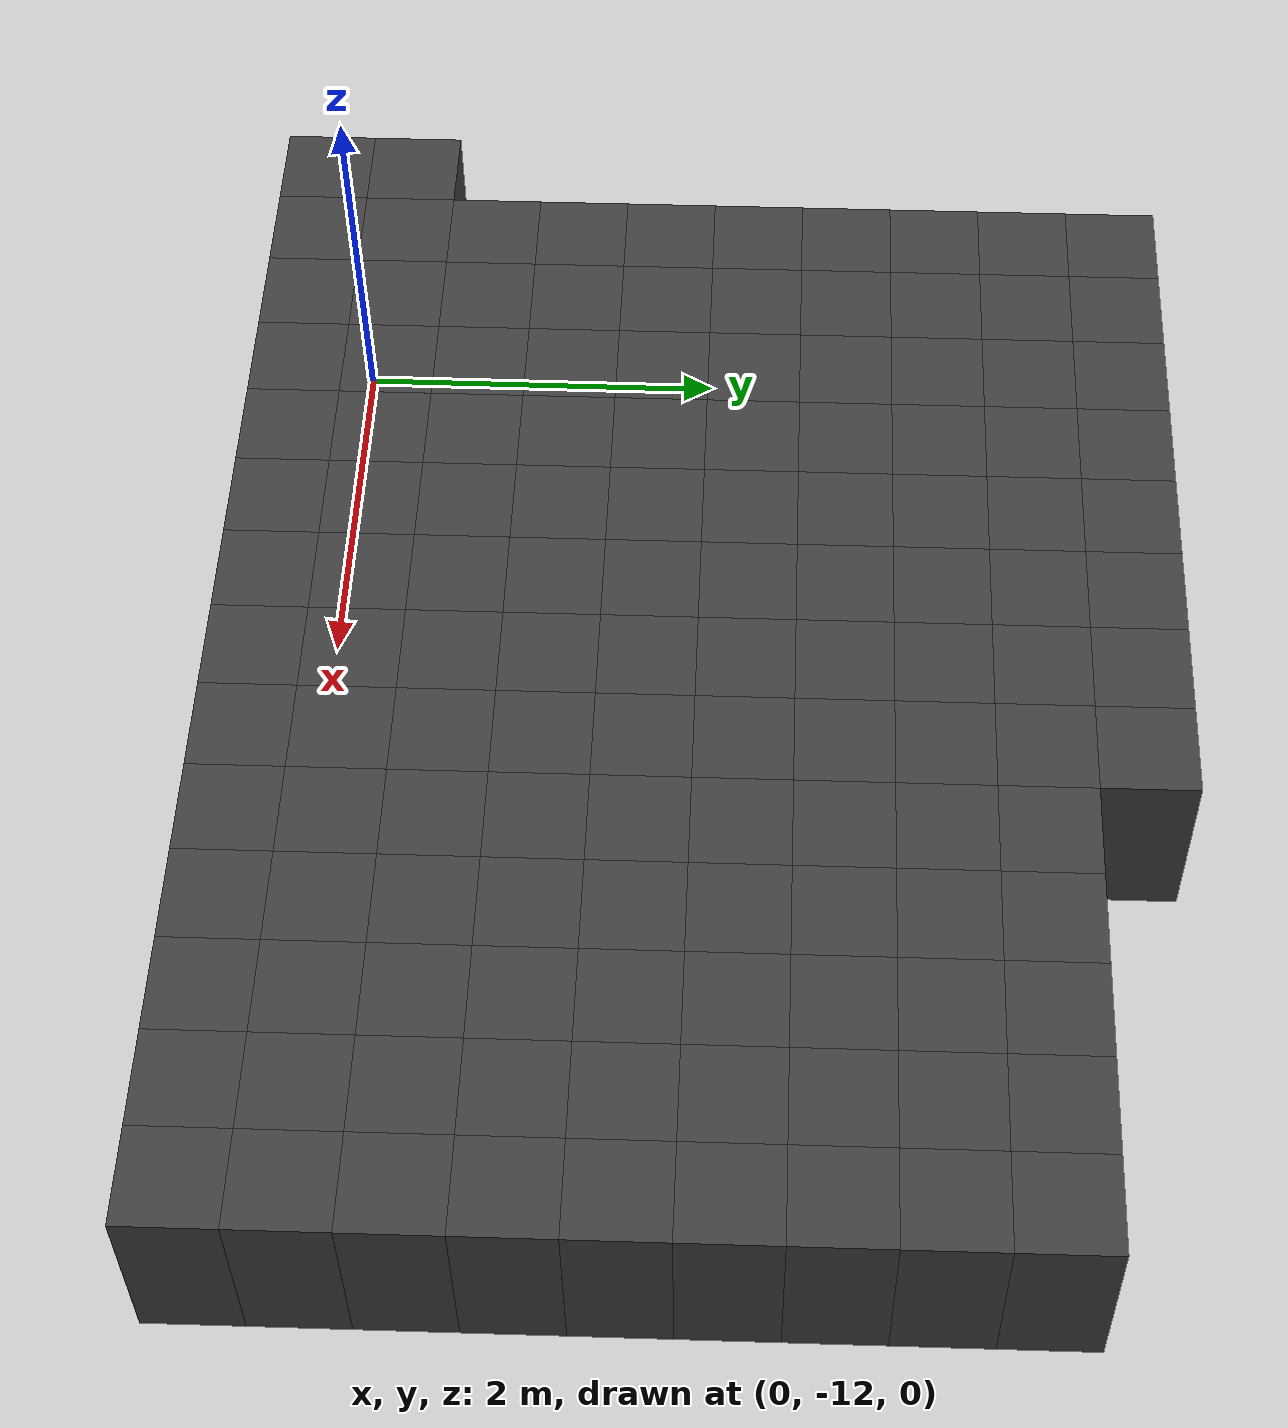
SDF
<sdf version="1.7">
 <world name="map_11672">
  <model name="ground_plane">
   <static>true</static>
   <link name="link">
    <collision name="collision">
     <geometry><plane><normal>0 0 1</normal><size>200 200</size></plane></geometry>
    </collision>
    <visual name="visual">
     <geometry><plane><normal>0 0 1</normal><size>200 200</size></plane></geometry>
     <material><ambient>0.8 0.8 0.8 1</ambient><diffuse>0.8 0.8 0.8 1</diffuse></material>
    </visual>
   </link>
  </model>
  <model name="maze_environment">
   <static>true</static>
   <link name="wall_1701">
    <pose>-0.250 -7.750 0.500 0 0 0</pose>
    <collision name="col"><geometry><box><size>0.5 0.5 1.0</size></box></geometry></collision>
    <visual name="vis">
     <geometry><box><size>0.5 0.5 1.0</size></box></geometry>
     <material><ambient>0.15 0.15 0.15 1</ambient><diffuse>0.25 0.25 0.25 1</diffuse></material>
    </visual>
   </link>
   <link name="wall_1702">
    <pose>0.250 -7.750 0.500 0 0 0</pose>
    <collision name="col"><geometry><box><size>0.5 0.5 1.0</size></box></geometry></collision>
    <visual name="vis">
     <geometry><box><size>0.5 0.5 1.0</size></box></geometry>
     <material><ambient>0.15 0.15 0.15 1</ambient><diffuse>0.25 0.25 0.25 1</diffuse></material>
    </visual>
   </link>
   <link name="wall_1703">
    <pose>0.750 -7.750 0.500 0 0 0</pose>
    <collision name="col"><geometry><box><size>0.5 0.5 1.0</size></box></geometry></collision>
    <visual name="vis">
     <geometry><box><size>0.5 0.5 1.0</size></box></geometry>
     <material><ambient>0.15 0.15 0.15 1</ambient><diffuse>0.25 0.25 0.25 1</diffuse></material>
    </visual>
   </link>
   <link name="wall_1704">
    <pose>1.250 -7.750 0.500 0 0 0</pose>
    <collision name="col"><geometry><box><size>0.5 0.5 1.0</size></box></geometry></collision>
    <visual name="vis">
     <geometry><box><size>0.5 0.5 1.0</size></box></geometry>
     <material><ambient>0.15 0.15 0.15 1</ambient><diffuse>0.25 0.25 0.25 1</diffuse></material>
    </visual>
   </link>
   <link name="wall_1705">
    <pose>1.750 -7.750 0.500 0 0 0</pose>
    <collision name="col"><geometry><box><size>0.5 0.5 1.0</size></box></geometry></collision>
    <visual name="vis">
     <geometry><box><size>0.5 0.5 1.0</size></box></geometry>
     <material><ambient>0.15 0.15 0.15 1</ambient><diffuse>0.25 0.25 0.25 1</diffuse></material>
    </visual>
   </link>
   <link name="wall_1706">
    <pose>2.250 -7.750 0.500 0 0 0</pose>
    <collision name="col"><geometry><box><size>0.5 0.5 1.0</size></box></geometry></collision>
    <visual name="vis">
     <geometry><box><size>0.5 0.5 1.0</size></box></geometry>
     <material><ambient>0.15 0.15 0.15 1</ambient><diffuse>0.25 0.25 0.25 1</diffuse></material>
    </visual>
   </link>
   <link name="wall_1707">
    <pose>2.750 -7.750 0.500 0 0 0</pose>
    <collision name="col"><geometry><box><size>0.5 0.5 1.0</size></box></geometry></collision>
    <visual name="vis">
     <geometry><box><size>0.5 0.5 1.0</size></box></geometry>
     <material><ambient>0.15 0.15 0.15 1</ambient><diffuse>0.25 0.25 0.25 1</diffuse></material>
    </visual>
   </link>
   <link name="wall_1708">
    <pose>3.250 -7.750 0.500 0 0 0</pose>
    <collision name="col"><geometry><box><size>0.5 0.5 1.0</size></box></geometry></collision>
    <visual name="vis">
     <geometry><box><size>0.5 0.5 1.0</size></box></geometry>
     <material><ambient>0.15 0.15 0.15 1</ambient><diffuse>0.25 0.25 0.25 1</diffuse></material>
    </visual>
   </link>
   <link name="wall_1750">
    <pose>-0.250 -8.250 0.500 0 0 0</pose>
    <collision name="col"><geometry><box><size>0.5 0.5 1.0</size></box></geometry></collision>
    <visual name="vis">
     <geometry><box><size>0.5 0.5 1.0</size></box></geometry>
     <material><ambient>0.15 0.15 0.15 1</ambient><diffuse>0.25 0.25 0.25 1</diffuse></material>
    </visual>
   </link>
   <link name="wall_1751">
    <pose>0.250 -8.250 0.500 0 0 0</pose>
    <collision name="col"><geometry><box><size>0.5 0.5 1.0</size></box></geometry></collision>
    <visual name="vis">
     <geometry><box><size>0.5 0.5 1.0</size></box></geometry>
     <material><ambient>0.15 0.15 0.15 1</ambient><diffuse>0.25 0.25 0.25 1</diffuse></material>
    </visual>
   </link>
   <link name="wall_1752">
    <pose>0.750 -8.250 0.500 0 0 0</pose>
    <collision name="col"><geometry><box><size>0.5 0.5 1.0</size></box></geometry></collision>
    <visual name="vis">
     <geometry><box><size>0.5 0.5 1.0</size></box></geometry>
     <material><ambient>0.15 0.15 0.15 1</ambient><diffuse>0.25 0.25 0.25 1</diffuse></material>
    </visual>
   </link>
   <link name="wall_1753">
    <pose>1.250 -8.250 0.500 0 0 0</pose>
    <collision name="col"><geometry><box><size>0.5 0.5 1.0</size></box></geometry></collision>
    <visual name="vis">
     <geometry><box><size>0.5 0.5 1.0</size></box></geometry>
     <material><ambient>0.15 0.15 0.15 1</ambient><diffuse>0.25 0.25 0.25 1</diffuse></material>
    </visual>
   </link>
   <link name="wall_1754">
    <pose>1.750 -8.250 0.500 0 0 0</pose>
    <collision name="col"><geometry><box><size>0.5 0.5 1.0</size></box></geometry></collision>
    <visual name="vis">
     <geometry><box><size>0.5 0.5 1.0</size></box></geometry>
     <material><ambient>0.15 0.15 0.15 1</ambient><diffuse>0.25 0.25 0.25 1</diffuse></material>
    </visual>
   </link>
   <link name="wall_1755">
    <pose>2.250 -8.250 0.500 0 0 0</pose>
    <collision name="col"><geometry><box><size>0.5 0.5 1.0</size></box></geometry></collision>
    <visual name="vis">
     <geometry><box><size>0.5 0.5 1.0</size></box></geometry>
     <material><ambient>0.15 0.15 0.15 1</ambient><diffuse>0.25 0.25 0.25 1</diffuse></material>
    </visual>
   </link>
   <link name="wall_1756">
    <pose>2.750 -8.250 0.500 0 0 0</pose>
    <collision name="col"><geometry><box><size>0.5 0.5 1.0</size></box></geometry></collision>
    <visual name="vis">
     <geometry><box><size>0.5 0.5 1.0</size></box></geometry>
     <material><ambient>0.15 0.15 0.15 1</ambient><diffuse>0.25 0.25 0.25 1</diffuse></material>
    </visual>
   </link>
   <link name="wall_1757">
    <pose>3.250 -8.250 0.500 0 0 0</pose>
    <collision name="col"><geometry><box><size>0.5 0.5 1.0</size></box></geometry></collision>
    <visual name="vis">
     <geometry><box><size>0.5 0.5 1.0</size></box></geometry>
     <material><ambient>0.15 0.15 0.15 1</ambient><diffuse>0.25 0.25 0.25 1</diffuse></material>
    </visual>
   </link>
   <link name="wall_1758">
    <pose>3.750 -8.250 0.500 0 0 0</pose>
    <collision name="col"><geometry><box><size>0.5 0.5 1.0</size></box></geometry></collision>
    <visual name="vis">
     <geometry><box><size>0.5 0.5 1.0</size></box></geometry>
     <material><ambient>0.15 0.15 0.15 1</ambient><diffuse>0.25 0.25 0.25 1</diffuse></material>
    </visual>
   </link>
   <link name="wall_1759">
    <pose>4.250 -8.250 0.500 0 0 0</pose>
    <collision name="col"><geometry><box><size>0.5 0.5 1.0</size></box></geometry></collision>
    <visual name="vis">
     <geometry><box><size>0.5 0.5 1.0</size></box></geometry>
     <material><ambient>0.15 0.15 0.15 1</ambient><diffuse>0.25 0.25 0.25 1</diffuse></material>
    </visual>
   </link>
   <link name="wall_1760">
    <pose>4.750 -8.250 0.500 0 0 0</pose>
    <collision name="col"><geometry><box><size>0.5 0.5 1.0</size></box></geometry></collision>
    <visual name="vis">
     <geometry><box><size>0.5 0.5 1.0</size></box></geometry>
     <material><ambient>0.15 0.15 0.15 1</ambient><diffuse>0.25 0.25 0.25 1</diffuse></material>
    </visual>
   </link>
   <link name="wall_1761">
    <pose>5.250 -8.250 0.500 0 0 0</pose>
    <collision name="col"><geometry><box><size>0.5 0.5 1.0</size></box></geometry></collision>
    <visual name="vis">
     <geometry><box><size>0.5 0.5 1.0</size></box></geometry>
     <material><ambient>0.15 0.15 0.15 1</ambient><diffuse>0.25 0.25 0.25 1</diffuse></material>
    </visual>
   </link>
   <link name="wall_1762">
    <pose>5.750 -8.250 0.500 0 0 0</pose>
    <collision name="col"><geometry><box><size>0.5 0.5 1.0</size></box></geometry></collision>
    <visual name="vis">
     <geometry><box><size>0.5 0.5 1.0</size></box></geometry>
     <material><ambient>0.15 0.15 0.15 1</ambient><diffuse>0.25 0.25 0.25 1</diffuse></material>
    </visual>
   </link>
   <link name="wall_1799">
    <pose>-0.250 -8.750 0.500 0 0 0</pose>
    <collision name="col"><geometry><box><size>0.5 0.5 1.0</size></box></geometry></collision>
    <visual name="vis">
     <geometry><box><size>0.5 0.5 1.0</size></box></geometry>
     <material><ambient>0.15 0.15 0.15 1</ambient><diffuse>0.25 0.25 0.25 1</diffuse></material>
    </visual>
   </link>
   <link name="wall_1800">
    <pose>0.250 -8.750 0.500 0 0 0</pose>
    <collision name="col"><geometry><box><size>0.5 0.5 1.0</size></box></geometry></collision>
    <visual name="vis">
     <geometry><box><size>0.5 0.5 1.0</size></box></geometry>
     <material><ambient>0.15 0.15 0.15 1</ambient><diffuse>0.25 0.25 0.25 1</diffuse></material>
    </visual>
   </link>
   <link name="wall_1801">
    <pose>0.750 -8.750 0.500 0 0 0</pose>
    <collision name="col"><geometry><box><size>0.5 0.5 1.0</size></box></geometry></collision>
    <visual name="vis">
     <geometry><box><size>0.5 0.5 1.0</size></box></geometry>
     <material><ambient>0.15 0.15 0.15 1</ambient><diffuse>0.25 0.25 0.25 1</diffuse></material>
    </visual>
   </link>
   <link name="wall_1802">
    <pose>1.250 -8.750 0.500 0 0 0</pose>
    <collision name="col"><geometry><box><size>0.5 0.5 1.0</size></box></geometry></collision>
    <visual name="vis">
     <geometry><box><size>0.5 0.5 1.0</size></box></geometry>
     <material><ambient>0.15 0.15 0.15 1</ambient><diffuse>0.25 0.25 0.25 1</diffuse></material>
    </visual>
   </link>
   <link name="wall_1803">
    <pose>1.750 -8.750 0.500 0 0 0</pose>
    <collision name="col"><geometry><box><size>0.5 0.5 1.0</size></box></geometry></collision>
    <visual name="vis">
     <geometry><box><size>0.5 0.5 1.0</size></box></geometry>
     <material><ambient>0.15 0.15 0.15 1</ambient><diffuse>0.25 0.25 0.25 1</diffuse></material>
    </visual>
   </link>
   <link name="wall_1804">
    <pose>2.250 -8.750 0.500 0 0 0</pose>
    <collision name="col"><geometry><box><size>0.5 0.5 1.0</size></box></geometry></collision>
    <visual name="vis">
     <geometry><box><size>0.5 0.5 1.0</size></box></geometry>
     <material><ambient>0.15 0.15 0.15 1</ambient><diffuse>0.25 0.25 0.25 1</diffuse></material>
    </visual>
   </link>
   <link name="wall_1805">
    <pose>2.750 -8.750 0.500 0 0 0</pose>
    <collision name="col"><geometry><box><size>0.5 0.5 1.0</size></box></geometry></collision>
    <visual name="vis">
     <geometry><box><size>0.5 0.5 1.0</size></box></geometry>
     <material><ambient>0.15 0.15 0.15 1</ambient><diffuse>0.25 0.25 0.25 1</diffuse></material>
    </visual>
   </link>
   <link name="wall_1806">
    <pose>3.250 -8.750 0.500 0 0 0</pose>
    <collision name="col"><geometry><box><size>0.5 0.5 1.0</size></box></geometry></collision>
    <visual name="vis">
     <geometry><box><size>0.5 0.5 1.0</size></box></geometry>
     <material><ambient>0.15 0.15 0.15 1</ambient><diffuse>0.25 0.25 0.25 1</diffuse></material>
    </visual>
   </link>
   <link name="wall_1807">
    <pose>3.750 -8.750 0.500 0 0 0</pose>
    <collision name="col"><geometry><box><size>0.5 0.5 1.0</size></box></geometry></collision>
    <visual name="vis">
     <geometry><box><size>0.5 0.5 1.0</size></box></geometry>
     <material><ambient>0.15 0.15 0.15 1</ambient><diffuse>0.25 0.25 0.25 1</diffuse></material>
    </visual>
   </link>
   <link name="wall_1808">
    <pose>4.250 -8.750 0.500 0 0 0</pose>
    <collision name="col"><geometry><box><size>0.5 0.5 1.0</size></box></geometry></collision>
    <visual name="vis">
     <geometry><box><size>0.5 0.5 1.0</size></box></geometry>
     <material><ambient>0.15 0.15 0.15 1</ambient><diffuse>0.25 0.25 0.25 1</diffuse></material>
    </visual>
   </link>
   <link name="wall_1809">
    <pose>4.750 -8.750 0.500 0 0 0</pose>
    <collision name="col"><geometry><box><size>0.5 0.5 1.0</size></box></geometry></collision>
    <visual name="vis">
     <geometry><box><size>0.5 0.5 1.0</size></box></geometry>
     <material><ambient>0.15 0.15 0.15 1</ambient><diffuse>0.25 0.25 0.25 1</diffuse></material>
    </visual>
   </link>
   <link name="wall_1810">
    <pose>5.250 -8.750 0.500 0 0 0</pose>
    <collision name="col"><geometry><box><size>0.5 0.5 1.0</size></box></geometry></collision>
    <visual name="vis">
     <geometry><box><size>0.5 0.5 1.0</size></box></geometry>
     <material><ambient>0.15 0.15 0.15 1</ambient><diffuse>0.25 0.25 0.25 1</diffuse></material>
    </visual>
   </link>
   <link name="wall_1811">
    <pose>5.750 -8.750 0.500 0 0 0</pose>
    <collision name="col"><geometry><box><size>0.5 0.5 1.0</size></box></geometry></collision>
    <visual name="vis">
     <geometry><box><size>0.5 0.5 1.0</size></box></geometry>
     <material><ambient>0.15 0.15 0.15 1</ambient><diffuse>0.25 0.25 0.25 1</diffuse></material>
    </visual>
   </link>
   <link name="wall_1848">
    <pose>-0.250 -9.250 0.500 0 0 0</pose>
    <collision name="col"><geometry><box><size>0.5 0.5 1.0</size></box></geometry></collision>
    <visual name="vis">
     <geometry><box><size>0.5 0.5 1.0</size></box></geometry>
     <material><ambient>0.15 0.15 0.15 1</ambient><diffuse>0.25 0.25 0.25 1</diffuse></material>
    </visual>
   </link>
   <link name="wall_1849">
    <pose>0.250 -9.250 0.500 0 0 0</pose>
    <collision name="col"><geometry><box><size>0.5 0.5 1.0</size></box></geometry></collision>
    <visual name="vis">
     <geometry><box><size>0.5 0.5 1.0</size></box></geometry>
     <material><ambient>0.15 0.15 0.15 1</ambient><diffuse>0.25 0.25 0.25 1</diffuse></material>
    </visual>
   </link>
   <link name="wall_1850">
    <pose>0.750 -9.250 0.500 0 0 0</pose>
    <collision name="col"><geometry><box><size>0.5 0.5 1.0</size></box></geometry></collision>
    <visual name="vis">
     <geometry><box><size>0.5 0.5 1.0</size></box></geometry>
     <material><ambient>0.15 0.15 0.15 1</ambient><diffuse>0.25 0.25 0.25 1</diffuse></material>
    </visual>
   </link>
   <link name="wall_1851">
    <pose>1.250 -9.250 0.500 0 0 0</pose>
    <collision name="col"><geometry><box><size>0.5 0.5 1.0</size></box></geometry></collision>
    <visual name="vis">
     <geometry><box><size>0.5 0.5 1.0</size></box></geometry>
     <material><ambient>0.15 0.15 0.15 1</ambient><diffuse>0.25 0.25 0.25 1</diffuse></material>
    </visual>
   </link>
   <link name="wall_1852">
    <pose>1.750 -9.250 0.500 0 0 0</pose>
    <collision name="col"><geometry><box><size>0.5 0.5 1.0</size></box></geometry></collision>
    <visual name="vis">
     <geometry><box><size>0.5 0.5 1.0</size></box></geometry>
     <material><ambient>0.15 0.15 0.15 1</ambient><diffuse>0.25 0.25 0.25 1</diffuse></material>
    </visual>
   </link>
   <link name="wall_1853">
    <pose>2.250 -9.250 0.500 0 0 0</pose>
    <collision name="col"><geometry><box><size>0.5 0.5 1.0</size></box></geometry></collision>
    <visual name="vis">
     <geometry><box><size>0.5 0.5 1.0</size></box></geometry>
     <material><ambient>0.15 0.15 0.15 1</ambient><diffuse>0.25 0.25 0.25 1</diffuse></material>
    </visual>
   </link>
   <link name="wall_1854">
    <pose>2.750 -9.250 0.500 0 0 0</pose>
    <collision name="col"><geometry><box><size>0.5 0.5 1.0</size></box></geometry></collision>
    <visual name="vis">
     <geometry><box><size>0.5 0.5 1.0</size></box></geometry>
     <material><ambient>0.15 0.15 0.15 1</ambient><diffuse>0.25 0.25 0.25 1</diffuse></material>
    </visual>
   </link>
   <link name="wall_1855">
    <pose>3.250 -9.250 0.500 0 0 0</pose>
    <collision name="col"><geometry><box><size>0.5 0.5 1.0</size></box></geometry></collision>
    <visual name="vis">
     <geometry><box><size>0.5 0.5 1.0</size></box></geometry>
     <material><ambient>0.15 0.15 0.15 1</ambient><diffuse>0.25 0.25 0.25 1</diffuse></material>
    </visual>
   </link>
   <link name="wall_1856">
    <pose>3.750 -9.250 0.500 0 0 0</pose>
    <collision name="col"><geometry><box><size>0.5 0.5 1.0</size></box></geometry></collision>
    <visual name="vis">
     <geometry><box><size>0.5 0.5 1.0</size></box></geometry>
     <material><ambient>0.15 0.15 0.15 1</ambient><diffuse>0.25 0.25 0.25 1</diffuse></material>
    </visual>
   </link>
   <link name="wall_1857">
    <pose>4.250 -9.250 0.500 0 0 0</pose>
    <collision name="col"><geometry><box><size>0.5 0.5 1.0</size></box></geometry></collision>
    <visual name="vis">
     <geometry><box><size>0.5 0.5 1.0</size></box></geometry>
     <material><ambient>0.15 0.15 0.15 1</ambient><diffuse>0.25 0.25 0.25 1</diffuse></material>
    </visual>
   </link>
   <link name="wall_1858">
    <pose>4.750 -9.250 0.500 0 0 0</pose>
    <collision name="col"><geometry><box><size>0.5 0.5 1.0</size></box></geometry></collision>
    <visual name="vis">
     <geometry><box><size>0.5 0.5 1.0</size></box></geometry>
     <material><ambient>0.15 0.15 0.15 1</ambient><diffuse>0.25 0.25 0.25 1</diffuse></material>
    </visual>
   </link>
   <link name="wall_1859">
    <pose>5.250 -9.250 0.500 0 0 0</pose>
    <collision name="col"><geometry><box><size>0.5 0.5 1.0</size></box></geometry></collision>
    <visual name="vis">
     <geometry><box><size>0.5 0.5 1.0</size></box></geometry>
     <material><ambient>0.15 0.15 0.15 1</ambient><diffuse>0.25 0.25 0.25 1</diffuse></material>
    </visual>
   </link>
   <link name="wall_1860">
    <pose>5.750 -9.250 0.500 0 0 0</pose>
    <collision name="col"><geometry><box><size>0.5 0.5 1.0</size></box></geometry></collision>
    <visual name="vis">
     <geometry><box><size>0.5 0.5 1.0</size></box></geometry>
     <material><ambient>0.15 0.15 0.15 1</ambient><diffuse>0.25 0.25 0.25 1</diffuse></material>
    </visual>
   </link>
   <link name="wall_1897">
    <pose>-0.250 -9.750 0.500 0 0 0</pose>
    <collision name="col"><geometry><box><size>0.5 0.5 1.0</size></box></geometry></collision>
    <visual name="vis">
     <geometry><box><size>0.5 0.5 1.0</size></box></geometry>
     <material><ambient>0.15 0.15 0.15 1</ambient><diffuse>0.25 0.25 0.25 1</diffuse></material>
    </visual>
   </link>
   <link name="wall_1898">
    <pose>0.250 -9.750 0.500 0 0 0</pose>
    <collision name="col"><geometry><box><size>0.5 0.5 1.0</size></box></geometry></collision>
    <visual name="vis">
     <geometry><box><size>0.5 0.5 1.0</size></box></geometry>
     <material><ambient>0.15 0.15 0.15 1</ambient><diffuse>0.25 0.25 0.25 1</diffuse></material>
    </visual>
   </link>
   <link name="wall_1899">
    <pose>0.750 -9.750 0.500 0 0 0</pose>
    <collision name="col"><geometry><box><size>0.5 0.5 1.0</size></box></geometry></collision>
    <visual name="vis">
     <geometry><box><size>0.5 0.5 1.0</size></box></geometry>
     <material><ambient>0.15 0.15 0.15 1</ambient><diffuse>0.25 0.25 0.25 1</diffuse></material>
    </visual>
   </link>
   <link name="wall_1900">
    <pose>1.250 -9.750 0.500 0 0 0</pose>
    <collision name="col"><geometry><box><size>0.5 0.5 1.0</size></box></geometry></collision>
    <visual name="vis">
     <geometry><box><size>0.5 0.5 1.0</size></box></geometry>
     <material><ambient>0.15 0.15 0.15 1</ambient><diffuse>0.25 0.25 0.25 1</diffuse></material>
    </visual>
   </link>
   <link name="wall_1901">
    <pose>1.750 -9.750 0.500 0 0 0</pose>
    <collision name="col"><geometry><box><size>0.5 0.5 1.0</size></box></geometry></collision>
    <visual name="vis">
     <geometry><box><size>0.5 0.5 1.0</size></box></geometry>
     <material><ambient>0.15 0.15 0.15 1</ambient><diffuse>0.25 0.25 0.25 1</diffuse></material>
    </visual>
   </link>
   <link name="wall_1902">
    <pose>2.250 -9.750 0.500 0 0 0</pose>
    <collision name="col"><geometry><box><size>0.5 0.5 1.0</size></box></geometry></collision>
    <visual name="vis">
     <geometry><box><size>0.5 0.5 1.0</size></box></geometry>
     <material><ambient>0.15 0.15 0.15 1</ambient><diffuse>0.25 0.25 0.25 1</diffuse></material>
    </visual>
   </link>
   <link name="wall_1903">
    <pose>2.750 -9.750 0.500 0 0 0</pose>
    <collision name="col"><geometry><box><size>0.5 0.5 1.0</size></box></geometry></collision>
    <visual name="vis">
     <geometry><box><size>0.5 0.5 1.0</size></box></geometry>
     <material><ambient>0.15 0.15 0.15 1</ambient><diffuse>0.25 0.25 0.25 1</diffuse></material>
    </visual>
   </link>
   <link name="wall_1904">
    <pose>3.250 -9.750 0.500 0 0 0</pose>
    <collision name="col"><geometry><box><size>0.5 0.5 1.0</size></box></geometry></collision>
    <visual name="vis">
     <geometry><box><size>0.5 0.5 1.0</size></box></geometry>
     <material><ambient>0.15 0.15 0.15 1</ambient><diffuse>0.25 0.25 0.25 1</diffuse></material>
    </visual>
   </link>
   <link name="wall_1905">
    <pose>3.750 -9.750 0.500 0 0 0</pose>
    <collision name="col"><geometry><box><size>0.5 0.5 1.0</size></box></geometry></collision>
    <visual name="vis">
     <geometry><box><size>0.5 0.5 1.0</size></box></geometry>
     <material><ambient>0.15 0.15 0.15 1</ambient><diffuse>0.25 0.25 0.25 1</diffuse></material>
    </visual>
   </link>
   <link name="wall_1906">
    <pose>4.250 -9.750 0.500 0 0 0</pose>
    <collision name="col"><geometry><box><size>0.5 0.5 1.0</size></box></geometry></collision>
    <visual name="vis">
     <geometry><box><size>0.5 0.5 1.0</size></box></geometry>
     <material><ambient>0.15 0.15 0.15 1</ambient><diffuse>0.25 0.25 0.25 1</diffuse></material>
    </visual>
   </link>
   <link name="wall_1907">
    <pose>4.750 -9.750 0.500 0 0 0</pose>
    <collision name="col"><geometry><box><size>0.5 0.5 1.0</size></box></geometry></collision>
    <visual name="vis">
     <geometry><box><size>0.5 0.5 1.0</size></box></geometry>
     <material><ambient>0.15 0.15 0.15 1</ambient><diffuse>0.25 0.25 0.25 1</diffuse></material>
    </visual>
   </link>
   <link name="wall_1908">
    <pose>5.250 -9.750 0.500 0 0 0</pose>
    <collision name="col"><geometry><box><size>0.5 0.5 1.0</size></box></geometry></collision>
    <visual name="vis">
     <geometry><box><size>0.5 0.5 1.0</size></box></geometry>
     <material><ambient>0.15 0.15 0.15 1</ambient><diffuse>0.25 0.25 0.25 1</diffuse></material>
    </visual>
   </link>
   <link name="wall_1909">
    <pose>5.750 -9.750 0.500 0 0 0</pose>
    <collision name="col"><geometry><box><size>0.5 0.5 1.0</size></box></geometry></collision>
    <visual name="vis">
     <geometry><box><size>0.5 0.5 1.0</size></box></geometry>
     <material><ambient>0.15 0.15 0.15 1</ambient><diffuse>0.25 0.25 0.25 1</diffuse></material>
    </visual>
   </link>
   <link name="wall_1946">
    <pose>-0.250 -10.250 0.500 0 0 0</pose>
    <collision name="col"><geometry><box><size>0.5 0.5 1.0</size></box></geometry></collision>
    <visual name="vis">
     <geometry><box><size>0.5 0.5 1.0</size></box></geometry>
     <material><ambient>0.15 0.15 0.15 1</ambient><diffuse>0.25 0.25 0.25 1</diffuse></material>
    </visual>
   </link>
   <link name="wall_1947">
    <pose>0.250 -10.250 0.500 0 0 0</pose>
    <collision name="col"><geometry><box><size>0.5 0.5 1.0</size></box></geometry></collision>
    <visual name="vis">
     <geometry><box><size>0.5 0.5 1.0</size></box></geometry>
     <material><ambient>0.15 0.15 0.15 1</ambient><diffuse>0.25 0.25 0.25 1</diffuse></material>
    </visual>
   </link>
   <link name="wall_1948">
    <pose>0.750 -10.250 0.500 0 0 0</pose>
    <collision name="col"><geometry><box><size>0.5 0.5 1.0</size></box></geometry></collision>
    <visual name="vis">
     <geometry><box><size>0.5 0.5 1.0</size></box></geometry>
     <material><ambient>0.15 0.15 0.15 1</ambient><diffuse>0.25 0.25 0.25 1</diffuse></material>
    </visual>
   </link>
   <link name="wall_1949">
    <pose>1.250 -10.250 0.500 0 0 0</pose>
    <collision name="col"><geometry><box><size>0.5 0.5 1.0</size></box></geometry></collision>
    <visual name="vis">
     <geometry><box><size>0.5 0.5 1.0</size></box></geometry>
     <material><ambient>0.15 0.15 0.15 1</ambient><diffuse>0.25 0.25 0.25 1</diffuse></material>
    </visual>
   </link>
   <link name="wall_1950">
    <pose>1.750 -10.250 0.500 0 0 0</pose>
    <collision name="col"><geometry><box><size>0.5 0.5 1.0</size></box></geometry></collision>
    <visual name="vis">
     <geometry><box><size>0.5 0.5 1.0</size></box></geometry>
     <material><ambient>0.15 0.15 0.15 1</ambient><diffuse>0.25 0.25 0.25 1</diffuse></material>
    </visual>
   </link>
   <link name="wall_1951">
    <pose>2.250 -10.250 0.500 0 0 0</pose>
    <collision name="col"><geometry><box><size>0.5 0.5 1.0</size></box></geometry></collision>
    <visual name="vis">
     <geometry><box><size>0.5 0.5 1.0</size></box></geometry>
     <material><ambient>0.15 0.15 0.15 1</ambient><diffuse>0.25 0.25 0.25 1</diffuse></material>
    </visual>
   </link>
   <link name="wall_1952">
    <pose>2.750 -10.250 0.500 0 0 0</pose>
    <collision name="col"><geometry><box><size>0.5 0.5 1.0</size></box></geometry></collision>
    <visual name="vis">
     <geometry><box><size>0.5 0.5 1.0</size></box></geometry>
     <material><ambient>0.15 0.15 0.15 1</ambient><diffuse>0.25 0.25 0.25 1</diffuse></material>
    </visual>
   </link>
   <link name="wall_1953">
    <pose>3.250 -10.250 0.500 0 0 0</pose>
    <collision name="col"><geometry><box><size>0.5 0.5 1.0</size></box></geometry></collision>
    <visual name="vis">
     <geometry><box><size>0.5 0.5 1.0</size></box></geometry>
     <material><ambient>0.15 0.15 0.15 1</ambient><diffuse>0.25 0.25 0.25 1</diffuse></material>
    </visual>
   </link>
   <link name="wall_1954">
    <pose>3.750 -10.250 0.500 0 0 0</pose>
    <collision name="col"><geometry><box><size>0.5 0.5 1.0</size></box></geometry></collision>
    <visual name="vis">
     <geometry><box><size>0.5 0.5 1.0</size></box></geometry>
     <material><ambient>0.15 0.15 0.15 1</ambient><diffuse>0.25 0.25 0.25 1</diffuse></material>
    </visual>
   </link>
   <link name="wall_1955">
    <pose>4.250 -10.250 0.500 0 0 0</pose>
    <collision name="col"><geometry><box><size>0.5 0.5 1.0</size></box></geometry></collision>
    <visual name="vis">
     <geometry><box><size>0.5 0.5 1.0</size></box></geometry>
     <material><ambient>0.15 0.15 0.15 1</ambient><diffuse>0.25 0.25 0.25 1</diffuse></material>
    </visual>
   </link>
   <link name="wall_1956">
    <pose>4.750 -10.250 0.500 0 0 0</pose>
    <collision name="col"><geometry><box><size>0.5 0.5 1.0</size></box></geometry></collision>
    <visual name="vis">
     <geometry><box><size>0.5 0.5 1.0</size></box></geometry>
     <material><ambient>0.15 0.15 0.15 1</ambient><diffuse>0.25 0.25 0.25 1</diffuse></material>
    </visual>
   </link>
   <link name="wall_1957">
    <pose>5.250 -10.250 0.500 0 0 0</pose>
    <collision name="col"><geometry><box><size>0.5 0.5 1.0</size></box></geometry></collision>
    <visual name="vis">
     <geometry><box><size>0.5 0.5 1.0</size></box></geometry>
     <material><ambient>0.15 0.15 0.15 1</ambient><diffuse>0.25 0.25 0.25 1</diffuse></material>
    </visual>
   </link>
   <link name="wall_1958">
    <pose>5.750 -10.250 0.500 0 0 0</pose>
    <collision name="col"><geometry><box><size>0.5 0.5 1.0</size></box></geometry></collision>
    <visual name="vis">
     <geometry><box><size>0.5 0.5 1.0</size></box></geometry>
     <material><ambient>0.15 0.15 0.15 1</ambient><diffuse>0.25 0.25 0.25 1</diffuse></material>
    </visual>
   </link>
   <link name="wall_1995">
    <pose>-0.250 -10.750 0.500 0 0 0</pose>
    <collision name="col"><geometry><box><size>0.5 0.5 1.0</size></box></geometry></collision>
    <visual name="vis">
     <geometry><box><size>0.5 0.5 1.0</size></box></geometry>
     <material><ambient>0.15 0.15 0.15 1</ambient><diffuse>0.25 0.25 0.25 1</diffuse></material>
    </visual>
   </link>
   <link name="wall_1996">
    <pose>0.250 -10.750 0.500 0 0 0</pose>
    <collision name="col"><geometry><box><size>0.5 0.5 1.0</size></box></geometry></collision>
    <visual name="vis">
     <geometry><box><size>0.5 0.5 1.0</size></box></geometry>
     <material><ambient>0.15 0.15 0.15 1</ambient><diffuse>0.25 0.25 0.25 1</diffuse></material>
    </visual>
   </link>
   <link name="wall_1997">
    <pose>0.750 -10.750 0.500 0 0 0</pose>
    <collision name="col"><geometry><box><size>0.5 0.5 1.0</size></box></geometry></collision>
    <visual name="vis">
     <geometry><box><size>0.5 0.5 1.0</size></box></geometry>
     <material><ambient>0.15 0.15 0.15 1</ambient><diffuse>0.25 0.25 0.25 1</diffuse></material>
    </visual>
   </link>
   <link name="wall_1998">
    <pose>1.250 -10.750 0.500 0 0 0</pose>
    <collision name="col"><geometry><box><size>0.5 0.5 1.0</size></box></geometry></collision>
    <visual name="vis">
     <geometry><box><size>0.5 0.5 1.0</size></box></geometry>
     <material><ambient>0.15 0.15 0.15 1</ambient><diffuse>0.25 0.25 0.25 1</diffuse></material>
    </visual>
   </link>
   <link name="wall_1999">
    <pose>1.750 -10.750 0.500 0 0 0</pose>
    <collision name="col"><geometry><box><size>0.5 0.5 1.0</size></box></geometry></collision>
    <visual name="vis">
     <geometry><box><size>0.5 0.5 1.0</size></box></geometry>
     <material><ambient>0.15 0.15 0.15 1</ambient><diffuse>0.25 0.25 0.25 1</diffuse></material>
    </visual>
   </link>
   <link name="wall_2000">
    <pose>2.250 -10.750 0.500 0 0 0</pose>
    <collision name="col"><geometry><box><size>0.5 0.5 1.0</size></box></geometry></collision>
    <visual name="vis">
     <geometry><box><size>0.5 0.5 1.0</size></box></geometry>
     <material><ambient>0.15 0.15 0.15 1</ambient><diffuse>0.25 0.25 0.25 1</diffuse></material>
    </visual>
   </link>
   <link name="wall_2001">
    <pose>2.750 -10.750 0.500 0 0 0</pose>
    <collision name="col"><geometry><box><size>0.5 0.5 1.0</size></box></geometry></collision>
    <visual name="vis">
     <geometry><box><size>0.5 0.5 1.0</size></box></geometry>
     <material><ambient>0.15 0.15 0.15 1</ambient><diffuse>0.25 0.25 0.25 1</diffuse></material>
    </visual>
   </link>
   <link name="wall_2002">
    <pose>3.250 -10.750 0.500 0 0 0</pose>
    <collision name="col"><geometry><box><size>0.5 0.5 1.0</size></box></geometry></collision>
    <visual name="vis">
     <geometry><box><size>0.5 0.5 1.0</size></box></geometry>
     <material><ambient>0.15 0.15 0.15 1</ambient><diffuse>0.25 0.25 0.25 1</diffuse></material>
    </visual>
   </link>
   <link name="wall_2003">
    <pose>3.750 -10.750 0.500 0 0 0</pose>
    <collision name="col"><geometry><box><size>0.5 0.5 1.0</size></box></geometry></collision>
    <visual name="vis">
     <geometry><box><size>0.5 0.5 1.0</size></box></geometry>
     <material><ambient>0.15 0.15 0.15 1</ambient><diffuse>0.25 0.25 0.25 1</diffuse></material>
    </visual>
   </link>
   <link name="wall_2004">
    <pose>4.250 -10.750 0.500 0 0 0</pose>
    <collision name="col"><geometry><box><size>0.5 0.5 1.0</size></box></geometry></collision>
    <visual name="vis">
     <geometry><box><size>0.5 0.5 1.0</size></box></geometry>
     <material><ambient>0.15 0.15 0.15 1</ambient><diffuse>0.25 0.25 0.25 1</diffuse></material>
    </visual>
   </link>
   <link name="wall_2005">
    <pose>4.750 -10.750 0.500 0 0 0</pose>
    <collision name="col"><geometry><box><size>0.5 0.5 1.0</size></box></geometry></collision>
    <visual name="vis">
     <geometry><box><size>0.5 0.5 1.0</size></box></geometry>
     <material><ambient>0.15 0.15 0.15 1</ambient><diffuse>0.25 0.25 0.25 1</diffuse></material>
    </visual>
   </link>
   <link name="wall_2006">
    <pose>5.250 -10.750 0.500 0 0 0</pose>
    <collision name="col"><geometry><box><size>0.5 0.5 1.0</size></box></geometry></collision>
    <visual name="vis">
     <geometry><box><size>0.5 0.5 1.0</size></box></geometry>
     <material><ambient>0.15 0.15 0.15 1</ambient><diffuse>0.25 0.25 0.25 1</diffuse></material>
    </visual>
   </link>
   <link name="wall_2007">
    <pose>5.750 -10.750 0.500 0 0 0</pose>
    <collision name="col"><geometry><box><size>0.5 0.5 1.0</size></box></geometry></collision>
    <visual name="vis">
     <geometry><box><size>0.5 0.5 1.0</size></box></geometry>
     <material><ambient>0.15 0.15 0.15 1</ambient><diffuse>0.25 0.25 0.25 1</diffuse></material>
    </visual>
   </link>
   <link name="wall_2041">
    <pose>-0.250 -11.250 0.500 0 0 0</pose>
    <collision name="col"><geometry><box><size>0.5 0.5 1.0</size></box></geometry></collision>
    <visual name="vis">
     <geometry><box><size>0.5 0.5 1.0</size></box></geometry>
     <material><ambient>0.15 0.15 0.15 1</ambient><diffuse>0.25 0.25 0.25 1</diffuse></material>
    </visual>
   </link>
   <link name="wall_2042">
    <pose>0.250 -11.250 0.500 0 0 0</pose>
    <collision name="col"><geometry><box><size>0.5 0.5 1.0</size></box></geometry></collision>
    <visual name="vis">
     <geometry><box><size>0.5 0.5 1.0</size></box></geometry>
     <material><ambient>0.15 0.15 0.15 1</ambient><diffuse>0.25 0.25 0.25 1</diffuse></material>
    </visual>
   </link>
   <link name="wall_2043">
    <pose>0.750 -11.250 0.500 0 0 0</pose>
    <collision name="col"><geometry><box><size>0.5 0.5 1.0</size></box></geometry></collision>
    <visual name="vis">
     <geometry><box><size>0.5 0.5 1.0</size></box></geometry>
     <material><ambient>0.15 0.15 0.15 1</ambient><diffuse>0.25 0.25 0.25 1</diffuse></material>
    </visual>
   </link>
   <link name="wall_2044">
    <pose>1.250 -11.250 0.500 0 0 0</pose>
    <collision name="col"><geometry><box><size>0.5 0.5 1.0</size></box></geometry></collision>
    <visual name="vis">
     <geometry><box><size>0.5 0.5 1.0</size></box></geometry>
     <material><ambient>0.15 0.15 0.15 1</ambient><diffuse>0.25 0.25 0.25 1</diffuse></material>
    </visual>
   </link>
   <link name="wall_2045">
    <pose>1.750 -11.250 0.500 0 0 0</pose>
    <collision name="col"><geometry><box><size>0.5 0.5 1.0</size></box></geometry></collision>
    <visual name="vis">
     <geometry><box><size>0.5 0.5 1.0</size></box></geometry>
     <material><ambient>0.15 0.15 0.15 1</ambient><diffuse>0.25 0.25 0.25 1</diffuse></material>
    </visual>
   </link>
   <link name="wall_2046">
    <pose>2.250 -11.250 0.500 0 0 0</pose>
    <collision name="col"><geometry><box><size>0.5 0.5 1.0</size></box></geometry></collision>
    <visual name="vis">
     <geometry><box><size>0.5 0.5 1.0</size></box></geometry>
     <material><ambient>0.15 0.15 0.15 1</ambient><diffuse>0.25 0.25 0.25 1</diffuse></material>
    </visual>
   </link>
   <link name="wall_2047">
    <pose>2.750 -11.250 0.500 0 0 0</pose>
    <collision name="col"><geometry><box><size>0.5 0.5 1.0</size></box></geometry></collision>
    <visual name="vis">
     <geometry><box><size>0.5 0.5 1.0</size></box></geometry>
     <material><ambient>0.15 0.15 0.15 1</ambient><diffuse>0.25 0.25 0.25 1</diffuse></material>
    </visual>
   </link>
   <link name="wall_2048">
    <pose>3.250 -11.250 0.500 0 0 0</pose>
    <collision name="col"><geometry><box><size>0.5 0.5 1.0</size></box></geometry></collision>
    <visual name="vis">
     <geometry><box><size>0.5 0.5 1.0</size></box></geometry>
     <material><ambient>0.15 0.15 0.15 1</ambient><diffuse>0.25 0.25 0.25 1</diffuse></material>
    </visual>
   </link>
   <link name="wall_2049">
    <pose>3.750 -11.250 0.500 0 0 0</pose>
    <collision name="col"><geometry><box><size>0.5 0.5 1.0</size></box></geometry></collision>
    <visual name="vis">
     <geometry><box><size>0.5 0.5 1.0</size></box></geometry>
     <material><ambient>0.15 0.15 0.15 1</ambient><diffuse>0.25 0.25 0.25 1</diffuse></material>
    </visual>
   </link>
   <link name="wall_2050">
    <pose>4.250 -11.250 0.500 0 0 0</pose>
    <collision name="col"><geometry><box><size>0.5 0.5 1.0</size></box></geometry></collision>
    <visual name="vis">
     <geometry><box><size>0.5 0.5 1.0</size></box></geometry>
     <material><ambient>0.15 0.15 0.15 1</ambient><diffuse>0.25 0.25 0.25 1</diffuse></material>
    </visual>
   </link>
   <link name="wall_2051">
    <pose>4.750 -11.250 0.500 0 0 0</pose>
    <collision name="col"><geometry><box><size>0.5 0.5 1.0</size></box></geometry></collision>
    <visual name="vis">
     <geometry><box><size>0.5 0.5 1.0</size></box></geometry>
     <material><ambient>0.15 0.15 0.15 1</ambient><diffuse>0.25 0.25 0.25 1</diffuse></material>
    </visual>
   </link>
   <link name="wall_2052">
    <pose>5.250 -11.250 0.500 0 0 0</pose>
    <collision name="col"><geometry><box><size>0.5 0.5 1.0</size></box></geometry></collision>
    <visual name="vis">
     <geometry><box><size>0.5 0.5 1.0</size></box></geometry>
     <material><ambient>0.15 0.15 0.15 1</ambient><diffuse>0.25 0.25 0.25 1</diffuse></material>
    </visual>
   </link>
   <link name="wall_2053">
    <pose>5.750 -11.250 0.500 0 0 0</pose>
    <collision name="col"><geometry><box><size>0.5 0.5 1.0</size></box></geometry></collision>
    <visual name="vis">
     <geometry><box><size>0.5 0.5 1.0</size></box></geometry>
     <material><ambient>0.15 0.15 0.15 1</ambient><diffuse>0.25 0.25 0.25 1</diffuse></material>
    </visual>
   </link>
   <link name="wall_2083">
    <pose>-0.750 -11.750 0.500 0 0 0</pose>
    <collision name="col"><geometry><box><size>0.5 0.5 1.0</size></box></geometry></collision>
    <visual name="vis">
     <geometry><box><size>0.5 0.5 1.0</size></box></geometry>
     <material><ambient>0.15 0.15 0.15 1</ambient><diffuse>0.25 0.25 0.25 1</diffuse></material>
    </visual>
   </link>
   <link name="wall_2084">
    <pose>-0.250 -11.750 0.500 0 0 0</pose>
    <collision name="col"><geometry><box><size>0.5 0.5 1.0</size></box></geometry></collision>
    <visual name="vis">
     <geometry><box><size>0.5 0.5 1.0</size></box></geometry>
     <material><ambient>0.15 0.15 0.15 1</ambient><diffuse>0.25 0.25 0.25 1</diffuse></material>
    </visual>
   </link>
   <link name="wall_2085">
    <pose>0.250 -11.750 0.500 0 0 0</pose>
    <collision name="col"><geometry><box><size>0.5 0.5 1.0</size></box></geometry></collision>
    <visual name="vis">
     <geometry><box><size>0.5 0.5 1.0</size></box></geometry>
     <material><ambient>0.15 0.15 0.15 1</ambient><diffuse>0.25 0.25 0.25 1</diffuse></material>
    </visual>
   </link>
   <link name="wall_2086">
    <pose>0.750 -11.750 0.500 0 0 0</pose>
    <collision name="col"><geometry><box><size>0.5 0.5 1.0</size></box></geometry></collision>
    <visual name="vis">
     <geometry><box><size>0.5 0.5 1.0</size></box></geometry>
     <material><ambient>0.15 0.15 0.15 1</ambient><diffuse>0.25 0.25 0.25 1</diffuse></material>
    </visual>
   </link>
   <link name="wall_2087">
    <pose>1.250 -11.750 0.500 0 0 0</pose>
    <collision name="col"><geometry><box><size>0.5 0.5 1.0</size></box></geometry></collision>
    <visual name="vis">
     <geometry><box><size>0.5 0.5 1.0</size></box></geometry>
     <material><ambient>0.15 0.15 0.15 1</ambient><diffuse>0.25 0.25 0.25 1</diffuse></material>
    </visual>
   </link>
   <link name="wall_2088">
    <pose>1.750 -11.750 0.500 0 0 0</pose>
    <collision name="col"><geometry><box><size>0.5 0.5 1.0</size></box></geometry></collision>
    <visual name="vis">
     <geometry><box><size>0.5 0.5 1.0</size></box></geometry>
     <material><ambient>0.15 0.15 0.15 1</ambient><diffuse>0.25 0.25 0.25 1</diffuse></material>
    </visual>
   </link>
   <link name="wall_2089">
    <pose>2.250 -11.750 0.500 0 0 0</pose>
    <collision name="col"><geometry><box><size>0.5 0.5 1.0</size></box></geometry></collision>
    <visual name="vis">
     <geometry><box><size>0.5 0.5 1.0</size></box></geometry>
     <material><ambient>0.15 0.15 0.15 1</ambient><diffuse>0.25 0.25 0.25 1</diffuse></material>
    </visual>
   </link>
   <link name="wall_2090">
    <pose>2.750 -11.750 0.500 0 0 0</pose>
    <collision name="col"><geometry><box><size>0.5 0.5 1.0</size></box></geometry></collision>
    <visual name="vis">
     <geometry><box><size>0.5 0.5 1.0</size></box></geometry>
     <material><ambient>0.15 0.15 0.15 1</ambient><diffuse>0.25 0.25 0.25 1</diffuse></material>
    </visual>
   </link>
   <link name="wall_2091">
    <pose>3.250 -11.750 0.500 0 0 0</pose>
    <collision name="col"><geometry><box><size>0.5 0.5 1.0</size></box></geometry></collision>
    <visual name="vis">
     <geometry><box><size>0.5 0.5 1.0</size></box></geometry>
     <material><ambient>0.15 0.15 0.15 1</ambient><diffuse>0.25 0.25 0.25 1</diffuse></material>
    </visual>
   </link>
   <link name="wall_2092">
    <pose>3.750 -11.750 0.500 0 0 0</pose>
    <collision name="col"><geometry><box><size>0.5 0.5 1.0</size></box></geometry></collision>
    <visual name="vis">
     <geometry><box><size>0.5 0.5 1.0</size></box></geometry>
     <material><ambient>0.15 0.15 0.15 1</ambient><diffuse>0.25 0.25 0.25 1</diffuse></material>
    </visual>
   </link>
   <link name="wall_2093">
    <pose>4.250 -11.750 0.500 0 0 0</pose>
    <collision name="col"><geometry><box><size>0.5 0.5 1.0</size></box></geometry></collision>
    <visual name="vis">
     <geometry><box><size>0.5 0.5 1.0</size></box></geometry>
     <material><ambient>0.15 0.15 0.15 1</ambient><diffuse>0.25 0.25 0.25 1</diffuse></material>
    </visual>
   </link>
   <link name="wall_2094">
    <pose>4.750 -11.750 0.500 0 0 0</pose>
    <collision name="col"><geometry><box><size>0.5 0.5 1.0</size></box></geometry></collision>
    <visual name="vis">
     <geometry><box><size>0.5 0.5 1.0</size></box></geometry>
     <material><ambient>0.15 0.15 0.15 1</ambient><diffuse>0.25 0.25 0.25 1</diffuse></material>
    </visual>
   </link>
   <link name="wall_2095">
    <pose>5.250 -11.750 0.500 0 0 0</pose>
    <collision name="col"><geometry><box><size>0.5 0.5 1.0</size></box></geometry></collision>
    <visual name="vis">
     <geometry><box><size>0.5 0.5 1.0</size></box></geometry>
     <material><ambient>0.15 0.15 0.15 1</ambient><diffuse>0.25 0.25 0.25 1</diffuse></material>
    </visual>
   </link>
   <link name="wall_2096">
    <pose>5.750 -11.750 0.500 0 0 0</pose>
    <collision name="col"><geometry><box><size>0.5 0.5 1.0</size></box></geometry></collision>
    <visual name="vis">
     <geometry><box><size>0.5 0.5 1.0</size></box></geometry>
     <material><ambient>0.15 0.15 0.15 1</ambient><diffuse>0.25 0.25 0.25 1</diffuse></material>
    </visual>
   </link>
   <link name="wall_2130">
    <pose>-0.750 -12.250 0.500 0 0 0</pose>
    <collision name="col"><geometry><box><size>0.5 0.5 1.0</size></box></geometry></collision>
    <visual name="vis">
     <geometry><box><size>0.5 0.5 1.0</size></box></geometry>
     <material><ambient>0.15 0.15 0.15 1</ambient><diffuse>0.25 0.25 0.25 1</diffuse></material>
    </visual>
   </link>
   <link name="wall_2131">
    <pose>-0.250 -12.250 0.500 0 0 0</pose>
    <collision name="col"><geometry><box><size>0.5 0.5 1.0</size></box></geometry></collision>
    <visual name="vis">
     <geometry><box><size>0.5 0.5 1.0</size></box></geometry>
     <material><ambient>0.15 0.15 0.15 1</ambient><diffuse>0.25 0.25 0.25 1</diffuse></material>
    </visual>
   </link>
   <link name="wall_2132">
    <pose>0.250 -12.250 0.500 0 0 0</pose>
    <collision name="col"><geometry><box><size>0.5 0.5 1.0</size></box></geometry></collision>
    <visual name="vis">
     <geometry><box><size>0.5 0.5 1.0</size></box></geometry>
     <material><ambient>0.15 0.15 0.15 1</ambient><diffuse>0.25 0.25 0.25 1</diffuse></material>
    </visual>
   </link>
   <link name="wall_2133">
    <pose>0.750 -12.250 0.500 0 0 0</pose>
    <collision name="col"><geometry><box><size>0.5 0.5 1.0</size></box></geometry></collision>
    <visual name="vis">
     <geometry><box><size>0.5 0.5 1.0</size></box></geometry>
     <material><ambient>0.15 0.15 0.15 1</ambient><diffuse>0.25 0.25 0.25 1</diffuse></material>
    </visual>
   </link>
   <link name="wall_2134">
    <pose>1.250 -12.250 0.500 0 0 0</pose>
    <collision name="col"><geometry><box><size>0.5 0.5 1.0</size></box></geometry></collision>
    <visual name="vis">
     <geometry><box><size>0.5 0.5 1.0</size></box></geometry>
     <material><ambient>0.15 0.15 0.15 1</ambient><diffuse>0.25 0.25 0.25 1</diffuse></material>
    </visual>
   </link>
   <link name="wall_2135">
    <pose>1.750 -12.250 0.500 0 0 0</pose>
    <collision name="col"><geometry><box><size>0.5 0.5 1.0</size></box></geometry></collision>
    <visual name="vis">
     <geometry><box><size>0.5 0.5 1.0</size></box></geometry>
     <material><ambient>0.15 0.15 0.15 1</ambient><diffuse>0.25 0.25 0.25 1</diffuse></material>
    </visual>
   </link>
   <link name="wall_2136">
    <pose>2.250 -12.250 0.500 0 0 0</pose>
    <collision name="col"><geometry><box><size>0.5 0.5 1.0</size></box></geometry></collision>
    <visual name="vis">
     <geometry><box><size>0.5 0.5 1.0</size></box></geometry>
     <material><ambient>0.15 0.15 0.15 1</ambient><diffuse>0.25 0.25 0.25 1</diffuse></material>
    </visual>
   </link>
   <link name="wall_2137">
    <pose>2.750 -12.250 0.500 0 0 0</pose>
    <collision name="col"><geometry><box><size>0.5 0.5 1.0</size></box></geometry></collision>
    <visual name="vis">
     <geometry><box><size>0.5 0.5 1.0</size></box></geometry>
     <material><ambient>0.15 0.15 0.15 1</ambient><diffuse>0.25 0.25 0.25 1</diffuse></material>
    </visual>
   </link>
   <link name="wall_2138">
    <pose>3.250 -12.250 0.500 0 0 0</pose>
    <collision name="col"><geometry><box><size>0.5 0.5 1.0</size></box></geometry></collision>
    <visual name="vis">
     <geometry><box><size>0.5 0.5 1.0</size></box></geometry>
     <material><ambient>0.15 0.15 0.15 1</ambient><diffuse>0.25 0.25 0.25 1</diffuse></material>
    </visual>
   </link>
   <link name="wall_2139">
    <pose>3.750 -12.250 0.500 0 0 0</pose>
    <collision name="col"><geometry><box><size>0.5 0.5 1.0</size></box></geometry></collision>
    <visual name="vis">
     <geometry><box><size>0.5 0.5 1.0</size></box></geometry>
     <material><ambient>0.15 0.15 0.15 1</ambient><diffuse>0.25 0.25 0.25 1</diffuse></material>
    </visual>
   </link>
   <link name="wall_2140">
    <pose>4.250 -12.250 0.500 0 0 0</pose>
    <collision name="col"><geometry><box><size>0.5 0.5 1.0</size></box></geometry></collision>
    <visual name="vis">
     <geometry><box><size>0.5 0.5 1.0</size></box></geometry>
     <material><ambient>0.15 0.15 0.15 1</ambient><diffuse>0.25 0.25 0.25 1</diffuse></material>
    </visual>
   </link>
   <link name="wall_2141">
    <pose>4.750 -12.250 0.500 0 0 0</pose>
    <collision name="col"><geometry><box><size>0.5 0.5 1.0</size></box></geometry></collision>
    <visual name="vis">
     <geometry><box><size>0.5 0.5 1.0</size></box></geometry>
     <material><ambient>0.15 0.15 0.15 1</ambient><diffuse>0.25 0.25 0.25 1</diffuse></material>
    </visual>
   </link>
   <link name="wall_2142">
    <pose>5.250 -12.250 0.500 0 0 0</pose>
    <collision name="col"><geometry><box><size>0.5 0.5 1.0</size></box></geometry></collision>
    <visual name="vis">
     <geometry><box><size>0.5 0.5 1.0</size></box></geometry>
     <material><ambient>0.15 0.15 0.15 1</ambient><diffuse>0.25 0.25 0.25 1</diffuse></material>
    </visual>
   </link>
   <link name="wall_2143">
    <pose>5.750 -12.250 0.500 0 0 0</pose>
    <collision name="col"><geometry><box><size>0.5 0.5 1.0</size></box></geometry></collision>
    <visual name="vis">
     <geometry><box><size>0.5 0.5 1.0</size></box></geometry>
     <material><ambient>0.15 0.15 0.15 1</ambient><diffuse>0.25 0.25 0.25 1</diffuse></material>
    </visual>
   </link>
  </model>
 </world>
</sdf>
